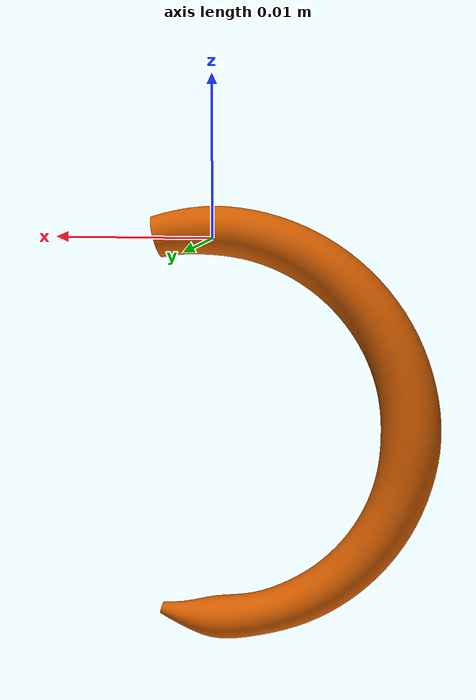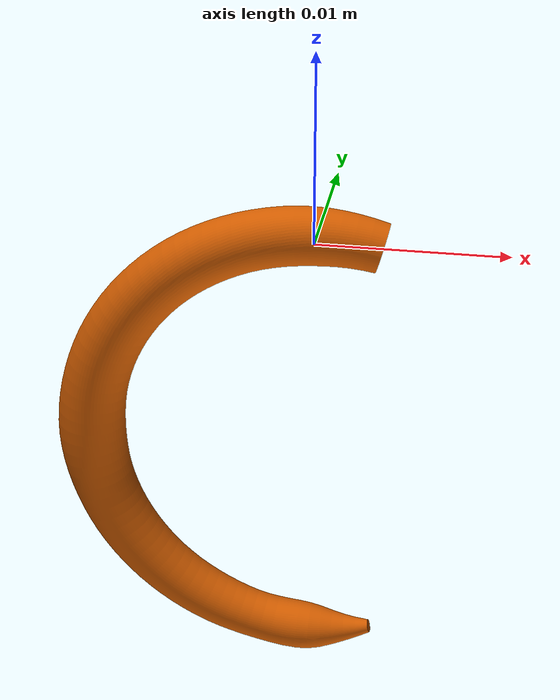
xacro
<?xml version="1.0" ?>
<robot name="target_object" xmlns:xacro="http://www.ros.org/wiki/xacro">

  <xacro:include filename="$(find surgical_sim)/models/urdf/target_object/templates/gazebo.links.xacro"/>
  <xacro:include filename="$(find surgical_sim)/models/urdf/target_object/templates/gazebo.joints.xacro"/>

  <xacro:property name="linear_lim" value="0.02"/>

  <xacro:property name="mass_x" value="0.001"/>
  <xacro:property name="mass_y" value="0.001"/>

  <xacro:property name="mass_z" value="0.001"/>
  <xacro:property name="mass_main" value="0.000337311"/>
  <xacro:property name="mass_" value="0.01"/>

  <xacro:arg name="targetID" default="right_t1"/>
  <xacro:arg name="parent_link" default="world"/>

  <link name="$(arg parent_link)"/>

 <link name="$(arg targetID)_target_base_link">
      <inertial>
        <origin xyz="0 0 0" rpy="0 0 0"/>
        <mass value="${mass_x}"/>
        <inertia
        ixx="${2.99391393770835E-08 * mass_x/mass_main}"
        ixy="${-1.99518680567514E-09 * mass_x/mass_main}"
        ixz="${2.72589485952597E-15 * mass_x/mass_main}"
        iyy="${8.27991394391801E-09 * mass_x/mass_main}"
        iyz="${3.38023650313121E-14 * mass_x/mass_main}"
        izz="${3.77117809466761E-08 * mass_x/mass_main}" />
      </inertial>
  </link>

  <link name="$(arg targetID)_target_y_link">
      <inertial>
        <origin xyz="0 0 0" rpy="0 0 0"/>
        <mass value="${mass_y}"/>
       <inertia
        ixx="${2.99391393770835E-08 * mass_y/mass_main}"
        ixy="${-1.99518680567514E-09 * mass_y/mass_main}"
        ixz="${2.72589485952597E-15 * mass_y/mass_main}"
        iyy="${8.27991394391801E-09 * mass_y/mass_main}"
        iyz="${3.38023650313121E-14 * mass_y/mass_main}"
        izz="${3.77117809466761E-08 * mass_y/mass_main}" />
      </inertial>
  </link>

  <link name="$(arg targetID)_target_z_link">
      <inertial>
        <origin xyz="0 0 0" rpy="0 0 0"/>
        <mass value="${mass_z}"/>
        <inertia
        ixx="${2.99391393770835E-08 * mass_z/mass_main}"
        ixy="${-1.99518680567514E-09 * mass_z/mass_main}"
        ixz="${2.72589485952597E-15 * mass_z/mass_main}"
        iyy="${8.27991394391801E-09 * mass_z/mass_main}"
        iyz="${3.38023650313121E-14 * mass_z/mass_main}"
        izz="${3.77117809466761E-08 * mass_z/mass_main}" />
      </inertial>
  </link>

   <link name="$(arg targetID)_target_z2_link">
      <inertial>
        <origin xyz="0 0 0" rpy="0 0 0"/>
        <mass value="${mass_z}"/>
        <inertia
        ixx="${2.99391393770835E-08 * mass_z/mass_main}"
        ixy="${-1.99518680567514E-09 * mass_z/mass_main}"
        ixz="${2.72589485952597E-15 * mass_z/mass_main}"
        iyy="${8.27991394391801E-09 * mass_z/mass_main}"
        iyz="${3.38023650313121E-14 * mass_z/mass_main}"
        izz="${3.77117809466761E-08 * mass_z/mass_main}" />
      </inertial>
  </link>

  <link name="$(arg targetID)_target_main_link">
    <visual>
      <origin rpy="0 0 0" xyz="0.0 0.0 0.0"/>
        <geometry>
          <mesh filename="package://surgical_sim/models/meshes/stl/target/target_translated.STL"/>
        </geometry>
    </visual>
    <collision name="$(arg targetID)_target_main_link_collision">
        <origin rpy="0 0 0" xyz="0.0 0.0 0.0"/>
        <geometry>
          <mesh filename="package://surgical_sim/models/meshes/stl/target/target_translated_collision.STL" scale="1.2 1.1 1.1"/>
        </geometry>
    </collision>
    <inertial>
      <origin
        xyz="-0.0027704 -0.00060187 -1.79059999999631E-08"
        rpy="0 0 0" />
      <mass
        value="${mass_}" />
              <inertia
        ixx="${2.99391393770835E-08 * mass_/mass_main}"
        ixy="${-1.99518680567514E-09 * mass_/mass_main}"
        ixz="${2.72589485952597E-15 * mass_/mass_main}"
        iyy="${8.27991394391801E-09 * mass_/mass_main}"
        iyz="${3.38023650313121E-14 * mass_/mass_main}"
        izz="${3.77117809466761E-08 * mass_/mass_main}" />
    </inertial>
  </link>

  <joint name="$(arg targetID)_target_base_joint" type="fixed">
     <origin xyz="0.0 0.0 0.0" rpy="0.0 0 0"/>
     <parent link="$(arg parent_link)"/>
     <child link="$(arg targetID)_target_base_link"/>
  </joint>

  <joint name="$(arg targetID)_target_x_joint" type="prismatic">
     <origin xyz="0.0 0.0 0.0" rpy="0.0 0 0"/>
     <axis xyz="1.0 0.0 0.0"/>
     <parent link="$(arg targetID)_target_base_link"/>
     <child link="$(arg targetID)_target_y_link"/>
     <limit lower="-${linear_lim}" upper="${linear_lim}" effort="1000.0" velocity="10.0"/>
  </joint>

  <joint name="$(arg targetID)_target_y_joint" type="prismatic">
     <origin xyz="0.0 0.0 0.0" rpy="0.0 0 0"/>
     <axis xyz="0.0 1.0 0.0"/>
     <parent link="$(arg targetID)_target_y_link"/>
     <child link="$(arg targetID)_target_z_link"/>
     <limit lower="-${linear_lim}" upper="${linear_lim}" effort="1000.0" velocity="10.0"/>
  </joint>

  <joint name="$(arg targetID)_target_z_joint" type="prismatic">
     <origin xyz="0.0 0.0 0.0" rpy="0.0 0 0"/>
     <axis xyz="0.0 0.0 1.0"/>
     <parent link="$(arg targetID)_target_z_link"/>
     <child link="$(arg targetID)_target_z2_link"/>
     <limit lower="-${0.05*linear_lim}" upper="${2*linear_lim}" effort="1000.0" velocity="10.0"/>
  </joint>

   <joint name="$(arg targetID)_target_z2_joint" type="continuous">
     <origin xyz="0.0 0.0 0.0" rpy="0.0 0 0"/>
     <axis xyz="0.0 0.0 1.0"/>
     <parent link="$(arg targetID)_target_z2_link"/>
     <child link="$(arg targetID)_target_main_link"/>
     <limit effort="1000.0" velocity="10.0"/>
  </joint>

  <xacro:gazebo_links name="$(arg parent_link)"/>
  <xacro:gazebo_links name="$(arg targetID)_target_base_link"/>
  <xacro:gazebo_links name="$(arg targetID)_target_y_link"/>

  <xacro:gazebo_links name="$(arg targetID)_target_z_link"/>

	<gazebo reference="$(arg targetID)_target_main_link">
			<turnGravityOff>false</turnGravityOff>
			<mu1>200</mu1>
			<mu2>200</mu2>
			<kd>10000000000000000000000.0</kd>
			<selfCollide>true</selfCollide>
			<maxVel>0.000001</maxVel>
			<minDepth>1</minDepth>
			<dampingFactor>0.05</dampingFactor>
      <collision name="$(arg targetID)_target_main_link_collision">
      <surface>
        <friction>
          <torsional>
            <coefficient>1.0</coefficient>
            <use_patch_radius>true</use_patch_radius>
            <patch_radius>0.05</patch_radius>
          </torsional>
        </friction>
      </surface>
    </collision>
	</gazebo>

  <xacro:gazebo_joints name="$(arg targetID)_target_base_joint"/>
  <xacro:gazebo_joints name="$(arg targetID)_target_x_joint"/>
  <xacro:gazebo_joints name="$(arg targetID)_target_y_joint"/>
  <xacro:gazebo_joints name="$(arg targetID)_target_z_joint"/>
  <xacro:gazebo_joints name="$(arg targetID)_target_z2_joint"/>

    <gazebo>
        <plugin name="gazebo_ros_control" filename="libgazebo_ros_control.so">
        <robotNamespace>/$(arg targetID)_target</robotNamespace>
        <robotSimType>gazebo_ros_control/DefaultRobotHWSim</robotSimType>
        <legacyModeNS>true</legacyModeNS>
        </plugin>
    </gazebo>

</robot>
